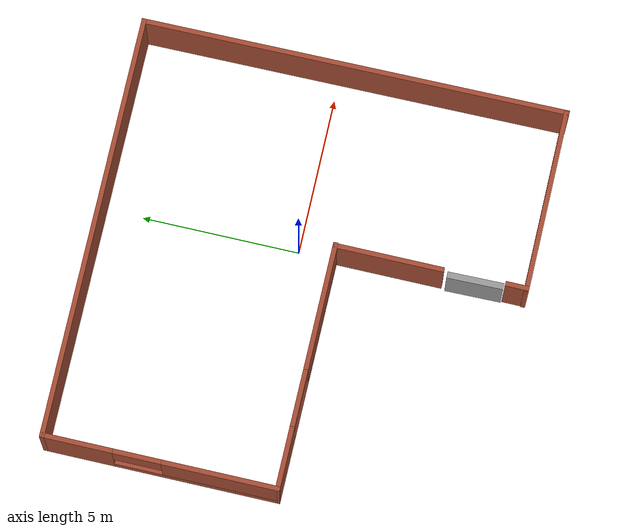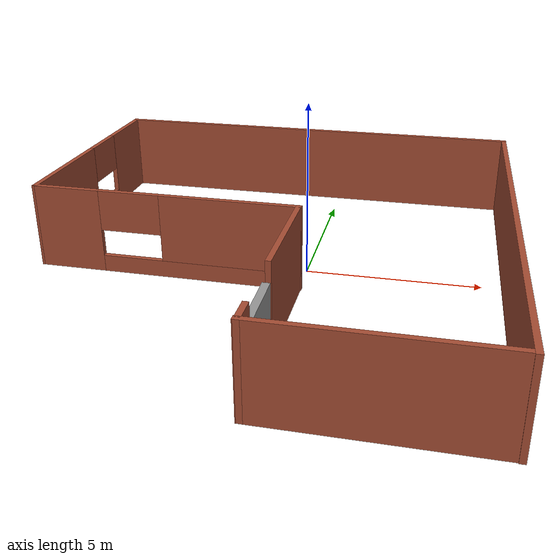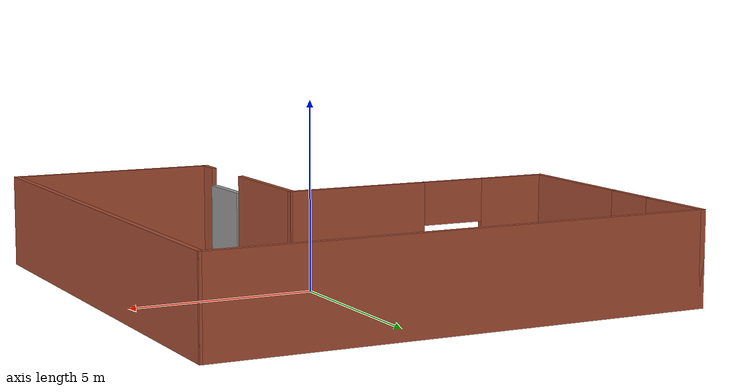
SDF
<?xml version='1.0'?>
<sdf version='1.6'>
  <model name='world'>
    <pose frame=''>-1.04926 -0.488197 0 0 -0 0</pose>
    <link name='Door_0'>
      <collision name='Door_0_Collision'>
        <geometry>
          <box>
            <size>1.78111 0.2 2</size>
          </box>
        </geometry>
        <pose frame=''>0 0 1 0 -0 0</pose>
      </collision>
      <visual name='Door_0_Visual'>
        <pose frame=''>0 0 1 0 -0 0</pose>
        <geometry>
          <box>
            <size>1.78111 0.2 2</size>
          </box>
        </geometry>
        <material>
          <script>
            <uri>file://media/materials/scripts/gazebo.material</uri>
            <name>Gazebo/Grey</name>
          </script>
        </material>
      </visual>
      <pose frame=''>1.01879 -5.09098 0 0 0 -1.55584</pose>
    </link>
    <link name='Wall_0'>
      <collision name='Wall_0_Collision'>
        <geometry>
          <box>
            <size>13.5 0.15 2.5</size>
          </box>
        </geometry>
        <pose frame=''>0 0 1.25 0 -0 0</pose>
      </collision>
      <visual name='Wall_0_Visual'>
        <pose frame=''>0 0 1.25 0 -0 0</pose>
        <geometry>
          <box>
            <size>13.5 0.15 2.5</size>
          </box>
        </geometry>
        <material>
          <script>
            <uri>file://media/materials/scripts/gazebo.material</uri>
            <name>Gazebo/Bricks</name>
          </script>
          <ambient>1 1 1 1</ambient>
        </material>
        <meta>
          <layer>0</layer>
        </meta>
      </visual>
      <pose frame=''>-0.040335 6.70517 0 0 -0 0</pose>
    </link>
    <link name='Wall_1'>
      <collision name='Wall_1_Collision'>
        <geometry>
          <box>
            <size>13.5606 0.15 2.5</size>
          </box>
        </geometry>
        <pose frame=''>0 0 1.25 0 -0 0</pose>
      </collision>
      <visual name='Wall_1_Visual'>
        <pose frame=''>0 0 1.25 0 -0 0</pose>
        <geometry>
          <box>
            <size>13.5606 0.15 2.5</size>
          </box>
        </geometry>
        <material>
          <script>
            <uri>file://media/materials/scripts/gazebo.material</uri>
            <name>Gazebo/Bricks</name>
          </script>
          <ambient>1 1 1 1</ambient>
        </material>
        <meta>
          <layer>0</layer>
        </meta>
      </visual>
      <pose frame=''>6.67489 -0 0 0 -0 -1.5648</pose>
    </link>
    <link name='Wall_2'>
      <collision name='Wall_2_Collision'>
        <geometry>
          <box>
            <size>5.83045 0.15 2.5</size>
          </box>
        </geometry>
        <pose frame=''>0 0 1.25 0 -0 0</pose>
      </collision>
      <visual name='Wall_2_Visual'>
        <pose frame=''>0 0 1.25 0 -0 0</pose>
        <geometry>
          <box>
            <size>5.83045 0.15 2.5</size>
          </box>
        </geometry>
        <material>
          <script>
            <uri>file://media/materials/scripts/gazebo.material</uri>
            <name>Gazebo/Bricks</name>
          </script>
          <ambient>1 1 1 1</ambient>
        </material>
        <meta>
          <layer>0</layer>
        </meta>
      </visual>
      <pose frame=''>3.85478 -6.68506 0 0 -0 3.14159</pose>
    </link>
    <link name='Wall_4'>
      <pose frame=''>-6.71533 3.03017 0 0 -0 -1.5708</pose>
      <visual name='Wall_4_Visual_0'>
        <pose frame=''>-2.61338 0 1.25 0 -0 0</pose>
        <geometry>
          <box>
            <size>2.27324 0.15 2.5</size>
          </box>
        </geometry>
        <material>
          <script>
            <uri>file://media/materials/scripts/gazebo.material</uri>
            <name>Gazebo/Bricks</name>
          </script>
          <ambient>1 1 1 1</ambient>
        </material>
        <meta>
          <layer>0</layer>
        </meta>
      </visual>
      <collision name='Wall_4_Collision_0'>
        <geometry>
          <box>
            <size>2.27324 0.15 2.5</size>
          </box>
        </geometry>
        <pose frame=''>-2.61338 0 1.25 0 -0 0</pose>
      </collision>
      <visual name='Wall_4_Visual_1'>
        <pose frame=''>1.13662 0 0.25 0 -0 0</pose>
        <geometry>
          <box>
            <size>5.22676 0.15 0.5</size>
          </box>
        </geometry>
        <material>
          <script>
            <uri>file://media/materials/scripts/gazebo.material</uri>
            <name>Gazebo/Bricks</name>
          </script>
          <ambient>1 1 1 1</ambient>
        </material>
        <meta>
          <layer>0</layer>
        </meta>
      </visual>
      <collision name='Wall_4_Collision_1'>
        <geometry>
          <box>
            <size>5.22676 0.15 0.5</size>
          </box>
        </geometry>
        <pose frame=''>1.13662 0 0.25 0 -0 0</pose>
      </collision>
      <visual name='Wall_4_Visual_2'>
        <pose frame=''>1.89866 0 1.5 0 -0 0</pose>
        <geometry>
          <box>
            <size>3.70267 0.15 2</size>
          </box>
        </geometry>
        <material>
          <script>
            <uri>file://media/materials/scripts/gazebo.material</uri>
            <name>Gazebo/Bricks</name>
          </script>
          <ambient>1 1 1 1</ambient>
        </material>
        <meta>
          <layer>0</layer>
        </meta>
      </visual>
      <collision name='Wall_4_Collision_2'>
        <geometry>
          <box>
            <size>3.70267 0.15 2</size>
          </box>
        </geometry>
        <pose frame=''>1.89866 0 1.5 0 -0 0</pose>
      </collision>
      <visual name='Wall_4_Visual_3'>
        <pose frame=''>-0.714716 0 1.9 0 -0 0</pose>
        <geometry>
          <box>
            <size>1.52409 0.15 1.2</size>
          </box>
        </geometry>
        <material>
          <script>
            <uri>file://media/materials/scripts/gazebo.material</uri>
            <name>Gazebo/Bricks</name>
          </script>
          <ambient>1 1 1 1</ambient>
        </material>
        <meta>
          <layer>0</layer>
        </meta>
      </visual>
      <collision name='Wall_4_Collision_3'>
        <geometry>
          <box>
            <size>1.52409 0.15 1.2</size>
          </box>
        </geometry>
        <pose frame=''>-0.714716 0 1.9 0 -0 0</pose>
      </collision>
    </link>
    <link name='Wall_5'>
      <pose frame=''>-2.83488 -0.654887 0 0 -0 -0.002592</pose>
      <visual name='Wall_5_Visual_0'>
        <pose frame=''>-2.93676 0 1.25 0 -0 0</pose>
        <geometry>
          <box>
            <size>2.0375 0.15 2.5</size>
          </box>
        </geometry>
        <material>
          <script>
            <uri>file://media/materials/scripts/gazebo.material</uri>
            <name>Gazebo/Bricks</name>
          </script>
          <ambient>1 1 1 1</ambient>
        </material>
        <meta>
          <layer>0</layer>
        </meta>
      </visual>
      <collision name='Wall_5_Collision_0'>
        <geometry>
          <box>
            <size>2.0375 0.15 2.5</size>
          </box>
        </geometry>
        <pose frame=''>-2.93676 0 1.25 0 -0 0</pose>
      </collision>
      <visual name='Wall_5_Visual_1'>
        <pose frame=''>1.01875 0 0.25 0 -0 0</pose>
        <geometry>
          <box>
            <size>5.87352 0.15 0.5</size>
          </box>
        </geometry>
        <material>
          <script>
            <uri>file://media/materials/scripts/gazebo.material</uri>
            <name>Gazebo/Bricks</name>
          </script>
          <ambient>1 1 1 1</ambient>
        </material>
        <meta>
          <layer>0</layer>
        </meta>
      </visual>
      <collision name='Wall_5_Collision_1'>
        <geometry>
          <box>
            <size>5.87352 0.15 0.5</size>
          </box>
        </geometry>
        <pose frame=''>1.01875 0 0.25 0 -0 0</pose>
      </collision>
      <visual name='Wall_5_Visual_2'>
        <pose frame=''>1.92161 0 1.5 0 -0 0</pose>
        <geometry>
          <box>
            <size>4.06779 0.15 2</size>
          </box>
        </geometry>
        <material>
          <script>
            <uri>file://media/materials/scripts/gazebo.material</uri>
            <name>Gazebo/Bricks</name>
          </script>
          <ambient>1 1 1 1</ambient>
        </material>
        <meta>
          <layer>0</layer>
        </meta>
      </visual>
      <collision name='Wall_5_Collision_2'>
        <geometry>
          <box>
            <size>4.06779 0.15 2</size>
          </box>
        </geometry>
        <pose frame=''>1.92161 0 1.5 0 -0 0</pose>
      </collision>
      <visual name='Wall_5_Visual_3'>
        <pose frame=''>-1.01515 0 1.9 0 -0 0</pose>
        <geometry>
          <box>
            <size>1.80573 0.15 1.2</size>
          </box>
        </geometry>
        <material>
          <script>
            <uri>file://media/materials/scripts/gazebo.material</uri>
            <name>Gazebo/Bricks</name>
          </script>
          <ambient>1 1 1 1</ambient>
        </material>
        <meta>
          <layer>0</layer>
        </meta>
      </visual>
      <collision name='Wall_5_Collision_3'>
        <geometry>
          <box>
            <size>1.80573 0.15 1.2</size>
          </box>
        </geometry>
        <pose frame=''>-1.01515 0 1.9 0 -0 0</pose>
      </collision>
    </link>
    <link name='Wall_6'>
      <collision name='Wall_6_Collision'>
        <geometry>
          <box>
            <size>3.5 0.15 2.5</size>
          </box>
        </geometry>
        <pose frame=''>0 0 1.25 0 -0 0</pose>
      </collision>
      <visual name='Wall_6_Visual'>
        <pose frame=''>0 0 1.25 0 -0 0</pose>
        <geometry>
          <box>
            <size>3.5 0.15 2.5</size>
          </box>
        </geometry>
        <material>
          <script>
            <uri>file://media/materials/scripts/gazebo.material</uri>
            <name>Gazebo/Bricks</name>
          </script>
          <ambient>1 1 1 1</ambient>
        </material>
        <meta>
          <layer>0</layer>
        </meta>
      </visual>
      <pose frame=''>1.02546 -2.33994 0 0 -0 -1.5708</pose>
    </link>
    <link name='Wall_8'>
      <collision name='Wall_8_Collision'>
        <geometry>
          <box>
            <size>0.75 0.15 2.5</size>
          </box>
        </geometry>
        <pose frame=''>0 0 1.25 0 -0 0</pose>
      </collision>
      <visual name='Wall_8_Visual'>
        <pose frame=''>0 0 1.25 0 -0 0</pose>
        <geometry>
          <box>
            <size>0.75 0.15 2.5</size>
          </box>
        </geometry>
        <material>
          <script>
            <uri>file://media/materials/scripts/gazebo.material</uri>
            <name>Gazebo/Bricks</name>
          </script>
          <ambient>1 1 1 1</ambient>
        </material>
        <meta>
          <layer>0</layer>
        </meta>
      </visual>
      <pose frame=''>1.03466 -6.38506 0 0 -0 1.5708</pose>
    </link>
    <static>1</static>
  </model>
</sdf>
